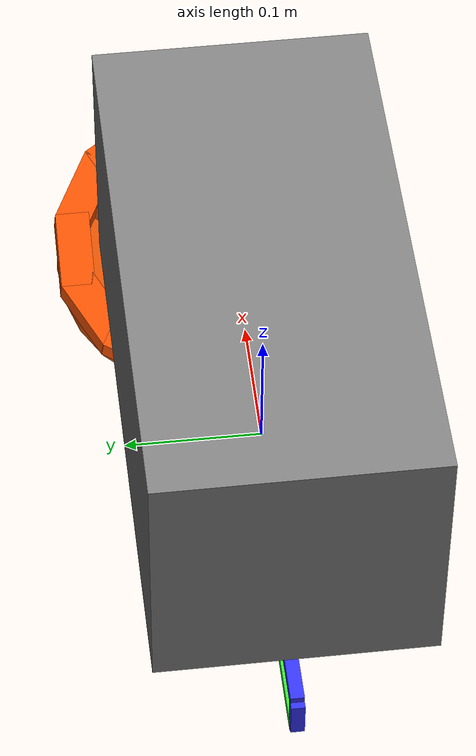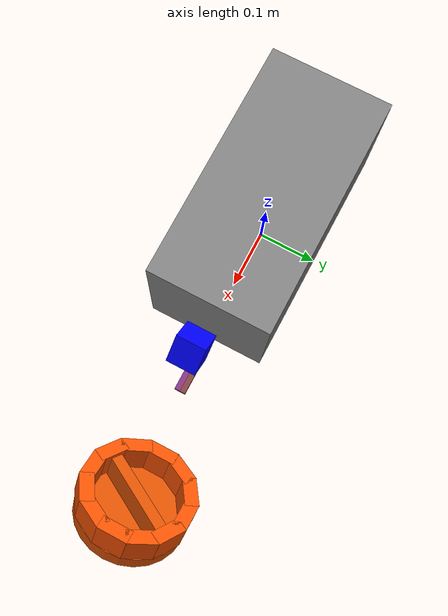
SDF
<?xml version="1.0" ?>
<sdf version="1.7">
    <world name="robosubSimulationV4">

        <gravity>0 0 0</gravity>

        <light name="sun" type="directional">
            <pose>0 0 10 0 0 0</pose>
            <diffuse>1 1 1 1</diffuse>
            <specular>0.5 0.5 0.5 1</specular>
            <direction>0.1 0.1 -1</direction>
            <cast_shadows>true</cast_shadows>
        </light>

        <model name="robosub">

            <link name="robosubBody">
                <pose>0 0 0.1 0 0 0</pose>
                <visual name="visual">
                    <geometry><box><size>0.4 0.2 0.2</size></box></geometry>
                    <material>
                        <ambient>0.5 0.5 0.5 1</ambient>
                        <diffuse>0.5 0.5 0.5 1</diffuse>
                    </material>
                </visual>
                <collision name="collision">
                    <geometry><box><size>0.49 0.29 0.19</size></box></geometry>
                </collision>
            </link>

            <link name="base">
                <pose>0 0 -0.0206 0 0 0</pose>
                <visual name="visual">
                    <geometry><box><size>0.01 0.01 0.0412</size></box></geometry>
                    <material>
                        <ambient>1 0.2 0.2 1</ambient>
                        <diffuse>1 0.2 0.2 1</diffuse>
                    </material>
                </visual>
                <collision name="collision">
                    <geometry><box><size>0.01 0.01 0.0412</size></box></geometry>
                </collision>
            </link>

            <link name="upperarm">
                <pose>0 0 -0.0412 0 0 0</pose>
                <visual name="visual1">
                    <pose>-0.104 0 0 0 0 0</pose>
                    <geometry><box><size>0.208 0.01 0.01</size></box></geometry>
                    <material>
                        <ambient>0.2 0.2 1 1</ambient>
                        <diffuse>0.2 0.2 1 1</diffuse>
                    </material>
                </visual>
                <collision name="collision1">
                    <pose>-0.104 0 0 0 0 0</pose>
                    <geometry><box><size>0.206 0.009 0.009</size></box></geometry>
                </collision>
                <visual name="visual2">
                    <pose>-0.208 0 -0.0146 0 0 0</pose>
                    <geometry><box><size>0.01 0.01 0.0292</size></box></geometry>
                    <material>
                        <ambient>0.2 0.2 1 1</ambient>
                        <diffuse>0.2 0.2 1 1</diffuse>
                    </material>
                </visual>
                <collision name="collision2">
                    <pose>-0.208 0 -0.0146 0 0 0</pose>
                    <geometry><box><size>0.009 0.009 0.028</size></box></geometry>
                </collision>
            </link>

            <link name="forearm">
                <pose>-0.208 0 -0.0704 0 0 0</pose>
                <visual name="visual">
                    <pose>0.1175 0 0 0 0 0</pose>
                    <geometry><box><size>0.235 0.01 0.01</size></box></geometry>
                    <material>
                        <ambient>0.2 1 0.2 1</ambient>
                        <diffuse>0.2 1 0.2 1</diffuse>
                    </material>
                </visual>
                <collision name="collision">
                    <pose>0.1175 0 0 0 0 0</pose>
                    <geometry><box><size>0.233 0.009 0.009</size></box></geometry>
                </collision>
            </link>

            <link name="wrist">
                <pose>0.027 0 -0.0704 0 0 0</pose>
                <visual name="visual">
                    <pose>0.07755 0 0 0 0 0</pose>
                    <geometry><box><size>0.1551 0.01 0.01</size></box></geometry>
                    <material>
                        <ambient>0.2 0.5 0.5 1</ambient>
                        <diffuse>0.2 0.5 0.5 1</diffuse>
                    </material>
                </visual>
                <collision name="collision">
                    <pose>0.07755 0 0 0 0 0</pose>
                    <geometry><box><size>0.153 0.009 0.009</size></box></geometry>
                </collision>
            </link>

            <link name="hand">
                <pose>0.1871 0 -0.0704 0 0 0</pose>
                <visual name="visual">
                    <geometry><box><size>0.01 0.01 0.01</size></box></geometry>
                    <material>
                        <ambient>1 0.6 0.1 1</ambient>
                        <diffuse>1 0.6 0.1 1</diffuse>
                    </material>
                </visual>
                <collision name="collision">
                    <geometry><box><size>0.01 0.01 0.01</size></box></geometry>
                </collision>
            </link>

            <link name="firstfinger">
                <pose>0.1921 0.005 -0.0704 0 0 0</pose>
                <visual name="visual">
                    <pose>0.051 0 0 0 0 0</pose>
                    <geometry><box><size>0.102 0.01 0.01</size></box></geometry>
                    <material>
                        <ambient>0.5 0.25 0.25 1</ambient>
                        <diffuse>0.5 0.25 0.25 1</diffuse>
                    </material>
                </visual>
                <collision name="collision">
                    <pose>0.051 0 0 0 0 0</pose>
                    <geometry><box><size>0.102 0.009 0.009</size></box></geometry>
                </collision>
            </link>

            <link name="secondfinger">
                <pose>0.1921 -0.005 -0.0704 0 0 0</pose>
                <visual name="visual">
                    <pose>0.051 0 0 0 0 0</pose>
                    <geometry><box><size>0.102 0.01 0.01</size></box></geometry>
                    <material>
                        <ambient>0.5 0.2 0.5 1</ambient>
                        <diffuse>0.5 0.2 0.5 1</diffuse>
                    </material>
                </visual>
                <collision name="collision">
                    <pose>0.051 0 0 0 0 0</pose>
                    <geometry><box><size>0.102 0.009 0.009</size></box></geometry>
                </collision>
            </link>

            <!-- camera -->
            <link name="camera_link">
                <pose relative_to="robosubBody">0.25 0 0 0 0.78 0</pose>
                <visual name="camera_visual">
                    <geometry>
                        <box>
                            <size>0.05 0.05 0.05</size>
                        </box>
                    </geometry>
                    <material>
                        <ambient>0 0 1 1</ambient>
                    </material>
                </visual>

                <sensor name="rgbd_camera" type="rgbd_camera">
                    <pose relative_to="camera_link">0 0 0 0 0 0</pose>
                    <always_on>true</always_on>
                    <update_rate>30</update_rate>
                    <visualize>true</visualize>

                    <camera>
                        <horizontal_fov>1.047</horizontal_fov>
                        <image>
                            <width>640</width>
                            <height>480</height>
                            <format>R8G8B8</format>
                        </image>
                        <clip>
                            <near>0.1</near>
                            <far>100</far>
                        </clip>
                    </camera>

                    <topic>/camera</topic>
                </sensor>
            </link>

            <joint name="cameraBToSub" type="fixed">
                <parent>robosubBody</parent>
                <child>camera_link</child>
            </joint>

            <joint name="fixedToWorld" type="fixed">
                <parent>world</parent>
                <child>robosubBody</child>
            </joint>

            <joint name="subToBase" type="revolute">
                <parent>robosubBody</parent>
                <child>base</child>
                <axis>
                    <xyz>0 0 1</xyz>
                    <limit>
                        <lower>-0.7854</lower>
                        <upper>0.7854</upper>
                        <effort>1000000</effort>
                    </limit>
                </axis>
            </joint>

            <joint name="baseToUpperarm" type="revolute">
                <parent>base</parent>
                <child>upperarm</child>
                <axis>
                    <xyz>0 1 0</xyz>
                    <limit><lower>-1.8307</lower><upper>0</upper><effort>1000000</effort></limit>
                </axis>
            </joint>

            <joint name="upperarmToForearm" type="revolute">
                <parent>upperarm</parent>
                <child>forearm</child>
                <axis>
                    <xyz>0 -1 0</xyz>
                    <limit><lower>-1.6493</lower><upper>0</upper><effort>1000000</effort></limit>
                </axis>
            </joint>

            <joint name="forearmToWrist" type="revolute">
                <parent>forearm</parent>
                <child>wrist</child>
                <axis>
                    <xyz>0 1 0</xyz>
                    <limit><lower>-0.3491</lower><upper>1.7523</upper><effort>1000000</effort></limit>
                </axis>
            </joint>

            <joint name="wristToHand" type="revolute">
                <parent>wrist</parent>
                <child>hand</child>
                <axis>
                    <xyz>1 0 0</xyz>
                    <limit><lower>0</lower><upper>4.7124</upper><effort>1000000</effort></limit>
                </axis>
            </joint>

            <joint name="handToFirstfinger" type="revolute">
                <parent>hand</parent>
                <child>firstfinger</child>
                <axis>
                    <xyz>0 0 1</xyz>
                    <limit><lower>0</lower><upper>0.7854</upper><effort>1000000</effort></limit>
                </axis>
            </joint>

            <joint name="handToSecondfinger" type="revolute">
                <parent>hand</parent>
                <child>secondfinger</child>
                <axis>
                    <xyz>0 0 1</xyz>
                    <limit><lower>-0.7854</lower><upper>0</upper><effort>1000000</effort></limit>
                </axis>
            </joint>

            <plugin filename="gz-sim-joint-state-publisher-system" name="gz::sim::systems::JointStatePublisher"/>

            <plugin filename="gz-sim-joint-controller-system" name="gz::sim::systems::JointController">
                <joint_name>subToBase</joint_name>
                <topic>/subToBaseTopic</topic>
                <initial_position>0.0</initial_position>
            </plugin>

            <plugin filename="gz-sim-joint-controller-system" name="gz::sim::systems::JointController">
                <joint_name>baseToUpperarm</joint_name>
                <topic>/baseToUpperarmTopic</topic>
                <initial_position>0.0</initial_position>
            </plugin>

            <plugin filename="gz-sim-joint-controller-system" name="gz::sim::systems::JointController">
                <joint_name>upperarmToForearm</joint_name>
                <topic>/upperarmToForearmTopic</topic>
                <initial_position>0.0</initial_position>
            </plugin>

            <plugin filename="gz-sim-joint-controller-system" name="gz::sim::systems::JointController">
                <joint_name>forearmToWrist</joint_name>
                <topic>/forearmToWristTopic</topic>
                <initial_position>0.0</initial_position>
            </plugin>

            <plugin filename="gz-sim-joint-controller-system" name="gz::sim::systems::JointController">
                <joint_name>wristToHand</joint_name>
                <topic>/wristToHandTopic</topic>
                <initial_position>0.0</initial_position>
            </plugin>

            <plugin filename="gz-sim-joint-controller-system" name="gz::sim::systems::JointController">
                <joint_name>handToFirstfinger</joint_name>
                <topic>/handToFirstfingerTopic</topic>
                <initial_position>0.0</initial_position>
            </plugin>

            <plugin filename="gz-sim-joint-controller-system" name="gz::sim::systems::JointController">
                <joint_name>handToSecondfinger</joint_name>
                <topic>/handToSecondfingerTopic</topic>
                <initial_position>0.0</initial_position>
            </plugin>

            <!-- REQUIRED: enable sensor updates (Jetty) -->
            <plugin
                    filename="gz-sim-sensors-system"
                    name="gz::sim::systems::Sensors">
                <render_engine>ogre2</render_engine>
            </plugin>

        </model>
        <model name="valve">
            <pose>0.5 0 -0.35 0 1 0</pose>
            <static>false</static>

            <link name="valveBase">
                <pose relative_to='__model__'> 0.03 0 0 0 1.5707  0</pose>
                <inertial>
                    <mass>1.0</mass>
                </inertial>

                <collision name="collision">
                    <geometry>
                        <cylinder>
                            <radius>0.12</radius>
                            <length>0.03</length>
                        </cylinder>
                    </geometry>
                </collision>

                <visual name="visual">
                    <geometry>
                        <cylinder>
                            <radius>0.12</radius>
                            <length>0.03</length>
                        </cylinder>
                    </geometry>
                    <material>
                        <ambient>0.886 0.325 0.012 1</ambient>  <!-- RGB(226, 83, 3) -->
                        <diffuse>0.886 0.325 0.012 1</diffuse>
                    </material>
                </visual>
            </link>
            <link name="valveHandle">
                <pose relative_to='valveBase'>0 0 -0.04 0 0 -1</pose>
                <inertial>
                    <mass>1.0</mass>
                </inertial>

                <collision name="collision">
                    <geometry>
                        <box>
                            <size>0.15 0.025 0.06</size>
                        </box>
                    </geometry>
                </collision>

                <visual name="visual">
                    <geometry>
                        <box>
                            <size>0.18 0.025 0.065</size>
                        </box>
                    </geometry>
                    <material>
                        <ambient>0.886 0.325 0.012 1</ambient>  <!-- RGB(226, 83, 3) -->
                        <diffuse>0.886 0.325 0.012 1</diffuse>
                    </material>
                </visual>
            </link>

            <link name="valveRim1">
                <pose relative_to='valveBase'>0 0.105 -0.051 0 0 0</pose>
                <inertial>
                    <mass>1.0</mass>
                </inertial>

                <collision name="collision">
                    <geometry>
                        <box>
                            <size>0.05 0.03 0.062</size>
                        </box>
                    </geometry>
                </collision>

                <visual name="visual">
                    <geometry>
                        <box>
                            <size>0.065 0.03 0.062</size>
                        </box>
                    </geometry>
                    <material>
                        <ambient>1 0.325 0.012 1</ambient>  <!-- RGB(226, 83, 3) -->
                        <diffuse>1 0.325 0.012 1</diffuse>
                    </material>
                </visual>
            </link>

            <link name="valveRim2">
                <pose relative_to='valveRim1'>0.0525 -0.014 0 0 0 -0.524</pose>
                <inertial>
                    <mass>1.0</mass>
                </inertial>

                <collision name="collision">
                    <geometry>
                        <box>
                            <size>0.05 0.03 0.062</size>
                        </box>
                    </geometry>
                </collision>

                <visual name="visual">
                    <geometry>
                        <box>
                            <size>0.065 0.03 0.062</size>
                        </box>
                    </geometry>
                    <material>
                        <ambient>1 0.325 0.012 1</ambient>  <!-- RGB(226, 83, 3) -->
                        <diffuse>1 0.325 0.012 1</diffuse>
                    </material>
                </visual>
            </link>

            <link name="valveRim3">
                <pose relative_to='valveRim2'>0.0525 -0.014 0 0 0 -0.524</pose>
                <inertial>
                    <mass>1.0</mass>
                </inertial>

                <collision name="collision">
                    <geometry>
                        <box>
                            <size>0.05 0.03 0.062</size>
                        </box>
                    </geometry>
                </collision>

                <visual name="visual">
                    <geometry>
                        <box>
                            <size>0.065 0.03 0.062</size>
                        </box>
                    </geometry>
                    <material>
                        <ambient>1 0.325 0.012 1</ambient>  <!-- RGB(226, 83, 3) -->
                        <diffuse>1 0.325 0.012 1</diffuse>
                    </material>
                </visual>
            </link>

            <link name="valveRim4">
                <pose relative_to='valveRim3'>0.0525 -0.014 0 0 0 -0.524</pose>
                <inertial>
                    <mass>1.0</mass>
                </inertial>

                <collision name="collision">
                    <geometry>
                        <box>
                            <size>0.05 0.03 0.062</size>
                        </box>
                    </geometry>
                </collision>

                <visual name="visual">
                    <geometry>
                        <box>
                            <size>0.065 0.03 0.062</size>
                        </box>
                    </geometry>
                    <material>
                        <ambient>1 0.325 0.012 1</ambient>  <!-- RGB(226, 83, 3) -->
                        <diffuse>1 0.325 0.012 1</diffuse>
                    </material>
                </visual>
            </link>

            <link name="valveRim5">
                <pose relative_to='valveRim4'>0.0525 -0.014 0 0 0 -0.524</pose>
                <inertial>
                    <mass>1.0</mass>
                </inertial>

                <collision name="collision">
                    <geometry>
                        <box>
                            <size>0.05 0.03 0.062</size>
                        </box>
                    </geometry>
                </collision>

                <visual name="visual">
                    <geometry>
                        <box>
                            <size>0.065 0.03 0.062</size>
                        </box>
                    </geometry>
                    <material>
                        <ambient>1 0.325 0.012 1</ambient>  <!-- RGB(226, 83, 3) -->
                        <diffuse>1 0.325 0.012 1</diffuse>
                    </material>
                </visual>
            </link>

            <link name="valveRim6">
                <pose relative_to='valveRim5'>0.0525 -0.014 0 0 0 -0.524</pose>
                <inertial>
                    <mass>1.0</mass>
                </inertial>

                <collision name="collision">
                    <geometry>
                        <box>
                            <size>0.05 0.03 0.062</size>
                        </box>
                    </geometry>
                </collision>

                <visual name="visual">
                    <geometry>
                        <box>
                            <size>0.065 0.03 0.062</size>
                        </box>
                    </geometry>
                    <material>
                        <ambient>1 0.325 0.012 1</ambient>  <!-- RGB(226, 83, 3) -->
                        <diffuse>1 0.325 0.012 1</diffuse>
                    </material>
                </visual>
            </link>

            <link name="valveRim7">
                <pose relative_to='valveRim6'>0.0525 -0.014 0 0 0 -0.524</pose>
                <inertial>
                    <mass>1.0</mass>
                </inertial>

                <collision name="collision">
                    <geometry>
                        <box>
                            <size>0.05 0.03 0.062</size>
                        </box>
                    </geometry>
                </collision>

                <visual name="visual">
                    <geometry>
                        <box>
                            <size>0.065 0.03 0.062</size>
                        </box>
                    </geometry>
                    <material>
                        <ambient>1 0.325 0.012 1</ambient>  <!-- RGB(226, 83, 3) -->
                        <diffuse>1 0.325 0.012 1</diffuse>
                    </material>
                </visual>
            </link>

            <link name="valveRim8">
                <pose relative_to='valveRim7'>0.0525 -0.014 0 0 0 -0.524</pose>
                <inertial>
                    <mass>1.0</mass>
                </inertial>

                <collision name="collision">
                    <geometry>
                        <box>
                            <size>0.05 0.03 0.062</size>
                        </box>
                    </geometry>
                </collision>

                <visual name="visual">
                    <geometry>
                        <box>
                            <size>0.065 0.03 0.062</size>
                        </box>
                    </geometry>
                    <material>
                        <ambient>1 0.325 0.012 1</ambient>  <!-- RGB(226, 83, 3) -->
                        <diffuse>1 0.325 0.012 1</diffuse>
                    </material>
                </visual>
            </link>

            <link name="valveRim9">
                <pose relative_to='valveRim8'>0.0525 -0.014 0 0 0 -0.524</pose>
                <inertial>
                    <mass>1.0</mass>
                </inertial>

                <collision name="collision">
                    <geometry>
                        <box>
                            <size>0.05 0.03 0.062</size>
                        </box>
                    </geometry>
                </collision>

                <visual name="visual">
                    <geometry>
                        <box>
                            <size>0.065 0.03 0.062</size>
                        </box>
                    </geometry>
                    <material>
                        <ambient>1 0.325 0.012 1</ambient>  <!-- RGB(226, 83, 3) -->
                        <diffuse>1 0.325 0.012 1</diffuse>
                    </material>
                </visual>
            </link>

            <link name="valveRim10">
                <pose relative_to='valveRim9'>0.0525 -0.014 0 0 0 -0.524</pose>
                <inertial>
                    <mass>1.0</mass>
                </inertial>

                <collision name="collision">
                    <geometry>
                        <box>
                            <size>0.05 0.03 0.062</size>
                        </box>
                    </geometry>
                </collision>

                <visual name="visual">
                    <geometry>
                        <box>
                            <size>0.065 0.03 0.062</size>
                        </box>
                    </geometry>
                    <material>
                        <ambient>1 0.325 0.012 1</ambient>  <!-- RGB(226, 83, 3) -->
                        <diffuse>1 0.325 0.012 1</diffuse>
                    </material>
                </visual>
            </link>

            <link name="valveRim11">
                <pose relative_to='valveRim10'>0.0525 -0.014 0 0 0 -0.524</pose>
                <inertial>
                    <mass>1.0</mass>
                </inertial>

                <collision name="collision">
                    <geometry>
                        <box>
                            <size>0.05 0.03 0.062</size>
                        </box>
                    </geometry>
                </collision>

                <visual name="visual">
                    <geometry>
                        <box>
                            <size>0.065 0.03 0.062</size>
                        </box>
                    </geometry>
                    <material>
                        <ambient>1 0.325 0.012 1</ambient>  <!-- RGB(226, 83, 3) -->
                        <diffuse>1 0.325 0.012 1</diffuse>
                    </material>
                </visual>
            </link>

            <link name="valveRim12">
                <pose relative_to='valveRim11'>0.0525 -0.014 0 0 0 -0.524</pose>
                <inertial>
                    <mass>1.0</mass>
                </inertial>

                <collision name="collision">
                    <geometry>
                        <box>
                            <size>0.05 0.03 0.062</size>
                        </box>
                    </geometry>
                </collision>

                <visual name="visual">
                    <geometry>
                        <box>
                            <size>0.065 0.03 0.062</size>
                        </box>
                    </geometry>
                    <material>
                        <ambient>1 0.325 0.012 1</ambient>  <!-- RGB(226, 83, 3) -->
                        <diffuse>1 0.325 0.012 1</diffuse>
                    </material>
                </visual>
            </link>

            <joint name="fixedToWorld_valve" type="fixed">
                <parent>world</parent>
                <child>valveBase</child>
            </joint>

            <joint name="valveToRim1" type="fixed">
                <parent>valveBase</parent>
                <child>valveRim1</child>
            </joint>
            <joint name="valveToRim2" type="fixed">
                <parent>valveBase</parent>
                <child>valveRim2</child>
            </joint>
            <joint name="valveToRim3" type="fixed">
                <parent>valveBase</parent>
                <child>valveRim3</child>
            </joint>
            <joint name="valveToRim4" type="fixed">
                <parent>valveBase</parent>
                <child>valveRim4</child>
            </joint>
            <joint name="valveToRim5" type="fixed">
                <parent>valveBase</parent>
                <child>valveRim5</child>
            </joint>
            <joint name="valveToRim6" type="fixed">
                <parent>valveBase</parent>
                <child>valveRim6</child>
            </joint>
            <joint name="valveToRim7" type="fixed">
                <parent>valveBase</parent>
                <child>valveRim7</child>
            </joint>
            <joint name="valveToRim8" type="fixed">
                <parent>valveBase</parent>
                <child>valveRim8</child>
            </joint>
            <joint name="valveToRim9" type="fixed">
                <parent>valveBase</parent>
                <child>valveRim9</child>
            </joint>
            <joint name="valveToRim10" type="fixed">
                <parent>valveBase</parent>
                <child>valveRim10</child>
            </joint>
            <joint name="valveToRim11" type="fixed">
                <parent>valveBase</parent>
                <child>valveRim11</child>
            </joint>
            <joint name="valveToRim12" type="fixed">
                <parent>valveBase</parent>
                <child>valveRim12</child>
            </joint>

            <joint name="valveToHandle" type="revolute">
                <parent>valveBase</parent>
                <child>valveHandle</child>
                <axis>
                    <xyz>0 0 1</xyz>
                    <limit>
                        <lower>-1.5707</lower>
                        <upper>0 </upper>
                        <effort>10</effort>
                        <velocity>1.0</velocity>
                    </limit>
                </axis>
            </joint>
        </model>
    </world>
</sdf>
